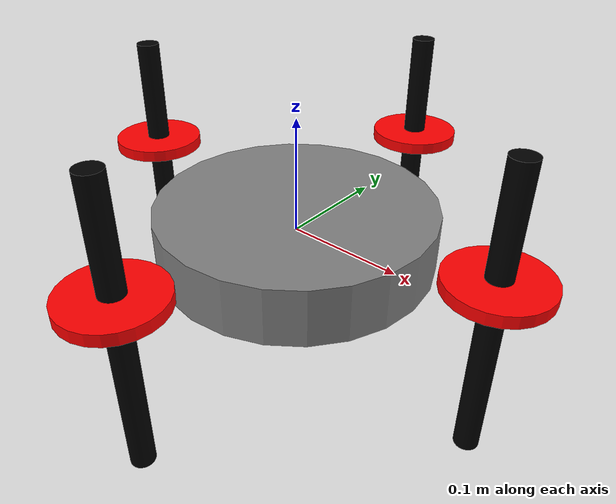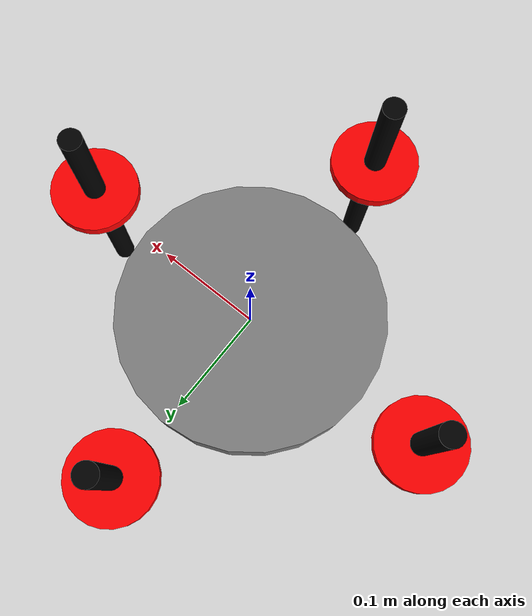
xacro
<?xml version="1.0"?>
<robot name="simple_quadrotor" xmlns:xacro="http://ros.org/wiki/xacro">
  <!-- Base -->
  <link name="base_link">
    <inertial>
      <mass value="1.0"/>
      <origin xyz="0 0 0"/>
      <inertia ixx="0.01" ixy="0.0" ixz="0.0" iyy="0.01" iyz="0.0" izz="0.02"/>
    </inertial>
    <visual>
      <geometry>
        <cylinder length="0.05" radius="0.12"/>
      </geometry>
      <material name="gray">
        <color rgba="0.5 0.5 0.5 1"/>
      </material>
    </visual>
    <collision>
      <geometry>
        <cylinder length="0.05" radius="0.12"/>
      </geometry>
    </collision>
  </link>

  <!-- 4 Arms -->
  <xacro:macro name="arm" params="name xyz rpy">
    <link name="${name}">
      <inertial>
        <mass value="0.1"/>
        <origin xyz="0 0 0"/>
        <inertia ixx="0.0001" ixy="0.0" ixz="0.0" iyy="0.0001" iyz="0.0" izz="0.0002"/>
      </inertial>
      <visual>
        <geometry>
          <cylinder length="0.25" radius="0.01"/>
        </geometry>
        <material name="black">
          <color rgba="0 0 0 1"/>
        </material>
      </visual>
      <collision>
        <geometry>
          <cylinder length="0.25" radius="0.01"/>
        </geometry>
      </collision>
    </link>
    <joint name="${name}_joint" type="fixed">
      <parent link="base_link"/>
      <child link="${name}"/>
      <origin xyz="${xyz}" rpy="${rpy}"/>
    </joint>
  </xacro:macro>

  <xacro:arm name="arm_1" xyz="0.18 0 0" rpy="0 0 0"/>
  <xacro:arm name="arm_2" xyz="-0.18 0 0" rpy="0 0 0"/>
  <xacro:arm name="arm_3" xyz="0 0.18 0" rpy="0 0 1.5708"/>
  <xacro:arm name="arm_4" xyz="0 -0.18 0" rpy="0 0 1.5708"/>

  <!-- 4 Propellers -->
  <xacro:macro name="propeller" params="name xyz">
    <link name="${name}">
      <inertial>
        <mass value="0.01"/>
        <origin xyz="0 0 0"/>
        <inertia ixx="0.00001" ixy="0.0" ixz="0.0" iyy="0.00001" iyz="0.0" izz="0.00002"/>
      </inertial>
      <visual>
        <geometry>
          <cylinder length="0.01" radius="0.04"/>
        </geometry>
        <material name="red">
          <color rgba="1 0 0 1"/>
        </material>
      </visual>
      <collision>
        <geometry>
          <cylinder length="0.01" radius="0.04"/>
        </geometry>
      </collision>
    </link>
    <joint name="${name}_joint" type="fixed">
      <parent link="base_link"/>
      <child link="${name}"/>
      <origin xyz="${xyz}" rpy="0 0 0"/>
    </joint>
  </xacro:macro>

  <xacro:propeller name="propeller_1" xyz="0.18 0 0.03"/>
  <xacro:propeller name="propeller_2" xyz="-0.18 0 0.03"/>
  <xacro:propeller name="propeller_3" xyz="0 0.18 0.03"/>
  <xacro:propeller name="propeller_4" xyz="0 -0.18 0.03"/>

</robot>
